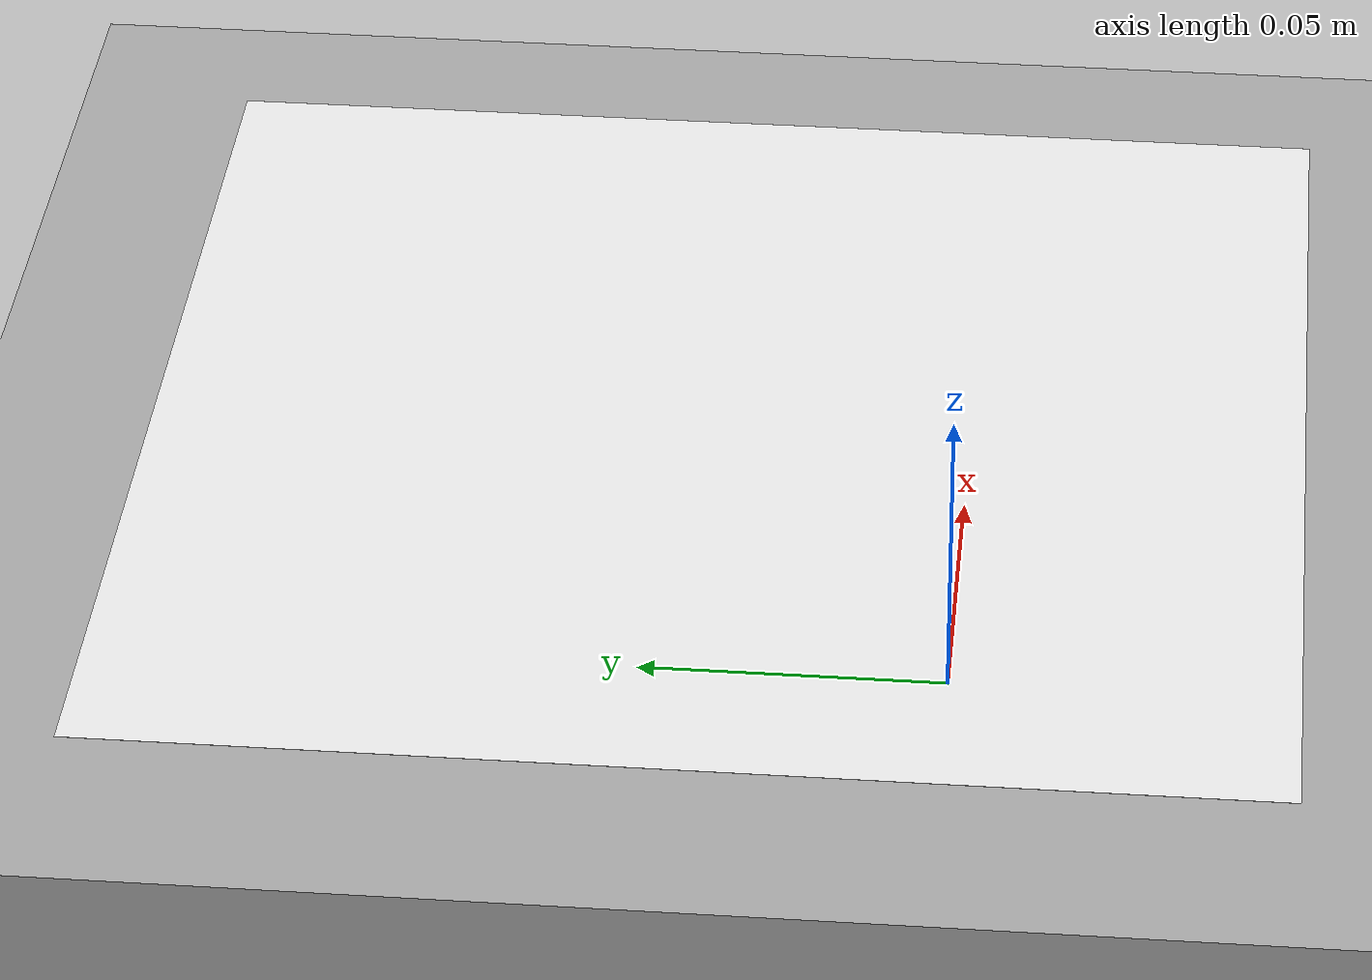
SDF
<sdf version="1.7">
 <world name="default">
  <light name="sun" type="directional">
   <pose>0 0 10 0 -0 0</pose>
   <diffuse>0.8 0.8 0.8 1</diffuse>
   <specular>0.2 0.2 0.2 1</specular>
   <attenuation>
    <range>1000</range>
    <constant>0.9</constant>
    <linear>0.01</linear>
    <quadratic>0.001</quadratic>
   </attenuation>
   <direction>-0.5 0.1 -0.9</direction>
   <spot><inner_angle>0</inner_angle><outer_angle>0</outer_angle><falloff>0</falloff></spot>
  </light>
  <model name="ground_plane">
   <static>1</static>
   <link name="link">
    <collision name="collision">
     <geometry><plane><normal>0 0 1</normal><size>100 100</size></plane></geometry>
     <surface>
      <contact><collide_bitmask>65535</collide_bitmask></contact>
      <friction><ode><mu>100</mu><mu2>50</mu2></ode></friction>
     </surface>
    </collision>
    <visual name="visual">
     <cast_shadows>0</cast_shadows>
     <geometry><plane><normal>0 0 1</normal><size>100 100</size></plane></geometry>
     <material>
      <script><uri>file://media/materials/scripts/gazebo.material</uri><name>Gazebo/Grey</name></script>
     </material>
    </visual>
   </link>
  </model>
  <gravity>0 0 -9.8</gravity>
  <magnetic_field>6e-06 2.3e-05 -4.2e-05</magnetic_field>
  <atmosphere type="adiabatic"/>
  <physics type="ode">
   <max_step_size>0.001</max_step_size>
   <real_time_factor>1</real_time_factor>
   <real_time_update_rate>1000</real_time_update_rate>
  </physics>
  <scene><ambient>0.4 0.4 0.4 1</ambient><background>0.7 0.7 0.7 1</background><shadows>1</shadows></scene>
  <spherical_coordinates>
   <surface_model>EARTH_WGS84</surface_model>
   <latitude_deg>0</latitude_deg>
   <longitude_deg>0</longitude_deg>
   <elevation>0</elevation>
   <heading_deg>0</heading_deg>
  </spherical_coordinates>
  <model name="my_aruco_tag"/>
  <model name="my_landing_platform">
   <static>1</static>
   <link name="link">
    <inertial>
     <mass>1</mass>
     <inertia><ixx>0.083</ixx><ixy>0</ixy><ixz>0</ixz><iyy>0.083</iyy><iyz>0</iyz><izz>0.083</izz></inertia>
    </inertial>
    <collision name="collision"><geometry><box><size>1.3 1.3 0.1</size></box></geometry></collision>
    <visual name="visual"><geometry><box><size>1.3 1.3 0.1</size></box></geometry></visual>
   </link>
   <pose>-0.079109 0.045258 0 0 -0 0</pose>
  </model>
  <model name="aruco_visual_marker_6">
   <link name="marker">
    <visual name="visual">
     <geometry><box><size>0.1778 0.1778 1e-05</size></box></geometry>
     <material>
      <script>
       <uri>model://aruco_visual_marker_6/materials/scripts</uri>
       <uri>model://aruco_visual_marker_6/materials/textures</uri>
       <name>ArucoVisualMarker6/Marker</name>
      </script>
      <ambient>1 1 1 1</ambient>
      <diffuse>1 1 1 1</diffuse>
      <specular>0 0 0 1</specular>
      <emissive>1 1 1 0</emissive>
      <shader type="vertex"><normal_map>__default__</normal_map></shader>
     </material>
    </visual>
    <collision name="collision"><geometry><box><size>0.1778 0.1778 1e-05</size></box></geometry></collision>
   </link>
   <link name="marker_pad">
    <pose relative_to="marker">0 0 -1e-05 0 -0 0</pose>
    <visual name="visual">
     <geometry><box><size>0.1778 0.1778 1e-05</size></box></geometry>
     <material>
      <lighting>1</lighting>
      <script><uri>file://media/materials/scripts/gazebo.material</uri><name>Gazebo/White</name></script>
      <ambient>0.3 0.3 0.3 1</ambient>
      <diffuse>0.7 0.7 0.7 1</diffuse>
      <specular>0.01 0.01 0.01 1</specular>
      <emissive>1 1 1 0</emissive>
      <shader type="vertex"><normal_map>__default__</normal_map></shader>
     </material>
    </visual>
    <collision name="collision"><geometry><box><size>0.1778 0.1778 1e-05</size></box></geometry></collision>
   </link>
   <joint name="marker_JOINT_marker_pad" type="revolute">
    <parent>marker</parent>
    <child>marker_pad</child>
    <axis>
     <xyz>0 0 1</xyz>
     <limit><upper>0</upper><lower>0</lower></limit>
     <dynamics><spring_reference>0</spring_reference><spring_stiffness>0</spring_stiffness></dynamics>
    </axis>
   </joint>
   <static>1</static>
   <pose>-0.006546 0.034735 0.053011 0 -0 0</pose>
  </model>
 </world>
</sdf>
